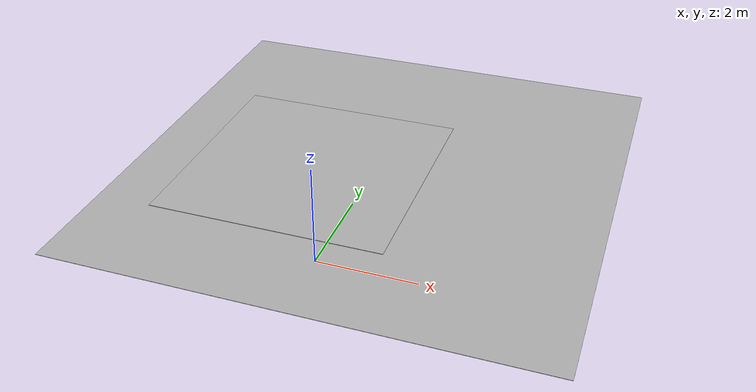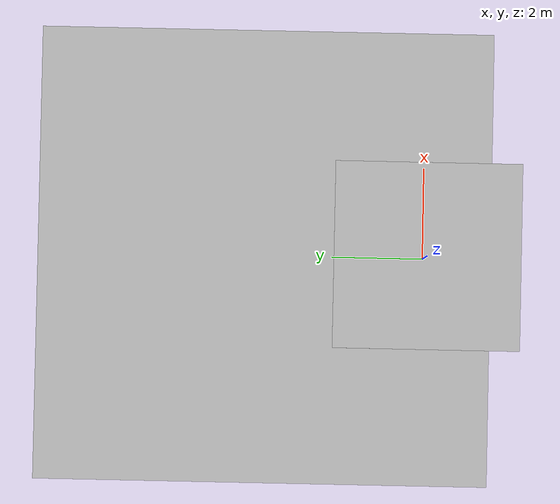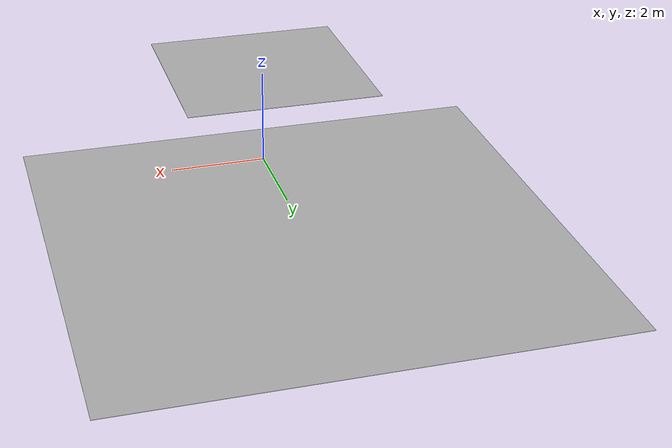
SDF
<?xml version="1.0" ?>
<sdf version="1.5">
  <world name="default">
    <!-- A global light source -->
    <include>
      <uri>model://sun</uri>
    </include>
    <!-- A ground plane -->
    <include>
      <uri>model://GroundPlane_Desert</uri>
    </include>
    <!-- A ceiling plane -->
    <include>
      <uri>model://CeilingPlane_Large</uri>
    </include>

    <light name='user_directional_light_0' type='directional'>
      <pose>0 0 0 0 -0 0</pose>
      <diffuse>0.5 0.5 0.5 1</diffuse>
      <specular>0.1 0.1 0.1 1</specular>
      <direction>0 0 1</direction>
      <attenuation>
        <range>20</range>
        <constant>0.5</constant>
        <linear>0.01</linear>
        <quadratic>0.001</quadratic>
      </attenuation>
      <cast_shadows>1</cast_shadows>
    </light>

    <!-- Default camera pose -->
    <gui>
      <camera name="user_camera">

          <pose frame=''>1.5 -6.0 2.25 0 0.12 1.57</pose>

      </camera>
    </gui>
    <physics name='default_physics' default='0' type='bullet'>
      <gravity>0 0 -9.8066</gravity>
      <bullet>
        <solver>
          <type>sequential_impulse</type>
          <iters>50</iters>
          <sor>1.3</sor>
        </solver>
        <constraints>

          <contact_surface_layer>0.0001</contact_surface_layer>
        </constraints>
      </bullet>
      <max_step_size>0.001</max_step_size>
      <real_time_factor>1</real_time_factor>
      <real_time_update_rate>1000</real_time_update_rate>
      <magnetic_field>6e-06 2.3e-05 -4.2e-05</magnetic_field>
    </physics>

    <scene>
      <sky>
        <clouds>
          <speed>0</speed>
        </clouds>
      </sky>
    </scene>

    <!-- Camera for recording video inside of Gazebo environment -->

  </world>
</sdf>

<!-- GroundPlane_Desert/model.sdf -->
<sdf version='1.7'>
  <model name='GroundPlane_Desert'>
    <static>1</static>
    <link name='ground'>
      <pose>0 3.5 0 0 -0 0</pose>
      <inertial>
        <inertia>
          <ixx>506.983</ixx>
          <ixy>0</ixy>
          <ixz>0</ixz>
          <iyy>506.983</iyy>
          <iyz>0</iyz>
          <izz>1013.33</izz>
        </inertia>
        <mass>1520</mass>
        <pose>0 0 0 0 -0 0</pose>
      </inertial>
      <self_collide>0</self_collide>
      <enable_wind>0</enable_wind>
      <kinematic>0</kinematic>
      <gravity>0</gravity>
      <visual name='ground_visual'>
        <cast_shadows>0</cast_shadows>
        <geometry>
          <box>
            <size>10 10 0.01</size>
          </box>
        </geometry>
        <material>
          <script>
            <uri>model://GroundPlane_Desert/materials/scripts</uri>
            <uri>model://GroundPlane_Desert/materials/textures</uri>
            <name>groundMat/Dirt</name>
          </script>
          <shader type='pixel'>
            <normal_map>__default__</normal_map>
          </shader>
        </material>
        <pose>0 0 0 0 -0 0</pose>
      </visual>
    </link>
    <static>0</static>
    <allow_auto_disable>1</allow_auto_disable>
  </model>
</sdf>

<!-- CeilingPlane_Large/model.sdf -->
<sdf version='1.7'>
  <model name='ceiling_plane'>
    <static>0</static>
    <link name='ceiling'>
      <pose>0 0 2.1 0 -0 0</pose>
      <inertial>
        <inertia>
          <ixx>506.983</ixx>
          <ixy>0</ixy>
          <ixz>0</ixz>
          <iyy>506.983</iyy>
          <iyz>0</iyz>
          <izz>1013.33</izz>
        </inertia>
        <mass>1520</mass>
        <pose>0 0 0 0 -0 0</pose>
      </inertial>
      <self_collide>0</self_collide>
      <enable_wind>0</enable_wind>
      <kinematic>0</kinematic>
      <gravity>0</gravity>
      <visual name='ceiling_visual'>
        <cast_shadows>0</cast_shadows>
        <pose>0 0 0.005 0 -0 1.57</pose>
        <geometry>
          <box>
            <size>4 4 0.01</size>
          </box>
        </geometry>
        <material>
          <script>
            <uri>model://CeilingPlane_Large/materials/scripts</uri>
            <uri>model://CeilingPlane_Large/materials/textures</uri>
            <name>ceilingMat/Checkerboard</name>
          </script>
          <shader type='pixel'>
            <normal_map>__default__</normal_map>
          </shader>
          <emissive>0 0 0 1</emissive>
        </material>
      </visual>
      <collision name='ceiling_collision'>
        <laser_retro>0</laser_retro>
        <max_contacts>10</max_contacts>
        <pose>0 0 0.005 0 -0 0</pose>
        <geometry>
          <box>
            <size>10 2 0.01</size>
          </box>
        </geometry>
        <surface>
          <friction>
            <ode>
              <mu>100000</mu>
              <mu2>100000</mu2>
              <fdir1>0 0 0</fdir1>
              <slip1>0</slip1>
              <slip2>0</slip2>
            </ode>
            <torsional>
              <coefficient>1</coefficient>
              <patch_radius>0</patch_radius>
              <surface_radius>0</surface_radius>
              <use_patch_radius>1</use_patch_radius>
              <ode>
                <slip>0</slip>
              </ode>
            </torsional>
          </friction>
          <bounce>
            <restitution_coefficient>0</restitution_coefficient>
            <threshold>1e+06</threshold>
          </bounce>
          <contact>
            <collide_without_contact>0</collide_without_contact>
            <collide_without_contact_bitmask>1</collide_without_contact_bitmask>
            <collide_bitmask>65535</collide_bitmask>
            <ode>
              <soft_cfm>0</soft_cfm>
              <soft_erp>0.2</soft_erp>
              <kp>1e+13</kp>
              <kd>1</kd>
              <max_vel>0.01</max_vel>
              <min_depth>0</min_depth>
            </ode>
            <bullet>
              <split_impulse>1</split_impulse>
              <split_impulse_penetration_threshold>-0.01</split_impulse_penetration_threshold>
              <soft_cfm>0</soft_cfm>
              <soft_erp>0.2</soft_erp>
              <kp>1e+13</kp>
              <kd>1</kd>
            </bullet>
          </contact>
        </surface>
      </collision>
      <sensor name='ceiling_contact_sensor' type='contact'>
        <always_on>1</always_on>
        <visualize>1</visualize>
        <contact>
          <collision>ceiling_collision</collision>
          <topic>__default_topic__</topic>
        </contact>
        <plugin name='contact_plugin' filename='libgazebo_ros_bumper.so'>
          <bumperTopicName>/ENV/BodyContact</bumperTopicName>
          <frameName>ceiling</frameName>
          <alwaysOn>true</alwaysOn>
          <updateRate>500</updateRate>
        </plugin>
        <pose>0 0 0 0 -0 0</pose>
      </sensor>
    </link>
    <joint name="ceiling_joint" type="fixed">
      <parent>world</parent>
      <child>ceiling</child>
      <pose>0 0 0 0 0 0</pose>
      <physics>
        <ode>
        </ode>
        <provide_feedback>true</provide_feedback>
      </physics>
    </joint>
    <static>0</static>
    <allow_auto_disable>1</allow_auto_disable>

    <plugin name="ForceTorque_Sensor" filename="libgazebo_ros_ft_sensor.so">
      <jointName>ceiling_joint</jointName>
      <topicName>/ENV/Surface_FT_sensor</topicName>
      <updateRate>500</updateRate>
  </plugin>
  </model>
</sdf>
